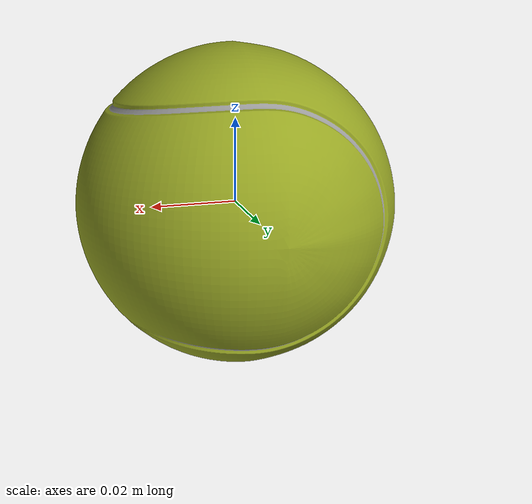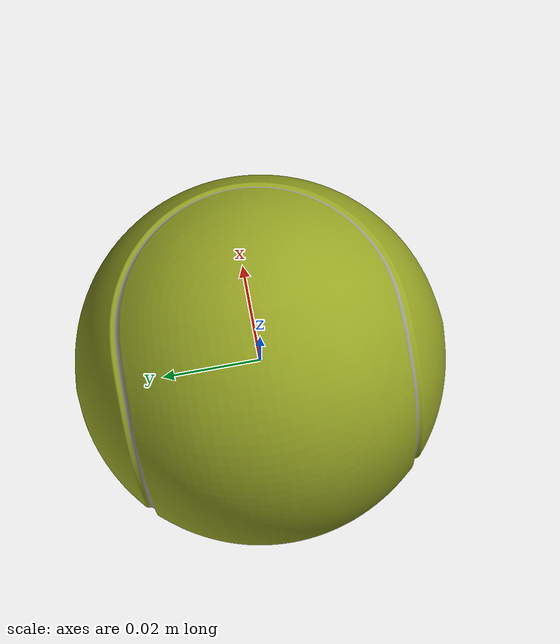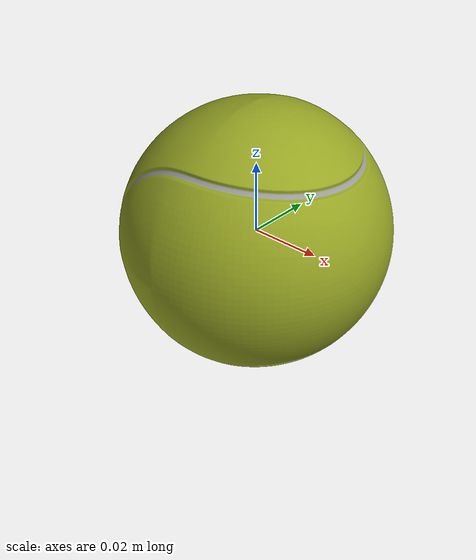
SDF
<?xml version="1.0" ?>
<sdf version="1.5">
  <model name="tennis_ball">
    <link name="link">
      <inertial>
        <pose>0 0 0 0 0 0</pose>
        <mass>0.002</mass>
        <inertia>
          <ixx>3.41333333333e-07</ixx>
          <ixy>0</ixy>
          <ixz>0</ixz>
          <iyy>3.41333333333e-07</iyy>
          <iyz>0</iyz>
          <izz>3.41333333333e-07</izz>
        </inertia>
      </inertial>

      <collision name="tennis_ball_colision">
        <pose>0 0 0 0 0 0</pose>
        <geometry>
          <mesh>
            <uri>model://tennis_ball/meshes/tennis_ball.dae</uri>
            <scale>0.5 0.5 0.5</scale>
          </mesh>
        </geometry>
        <surface>
          <friction>
            <ode>
              <mu>0.01</mu>
              <mu2>0.01</mu2>
            </ode>
          </friction>
          <contact>
            <ode>
              <kp>10000000.0</kp>
              <kd>10000000.0</kd>
              <min_depth>0.001</min_depth>
              <max_vel>1.1</max_vel>
            </ode>
          </contact>
        </surface>
      </collision>

      <visual name="tennis_ball_visual">
        <pose>0 0 0 0 0 0</pose>
        <geometry>
          <mesh>
            <uri>model://tennis_ball/meshes/tennis_ball.dae</uri>
            <scale>0.5 0.5 0.5</scale>
          </mesh>
        </geometry>
      </visual>
    </link>
  </model>
</sdf>
